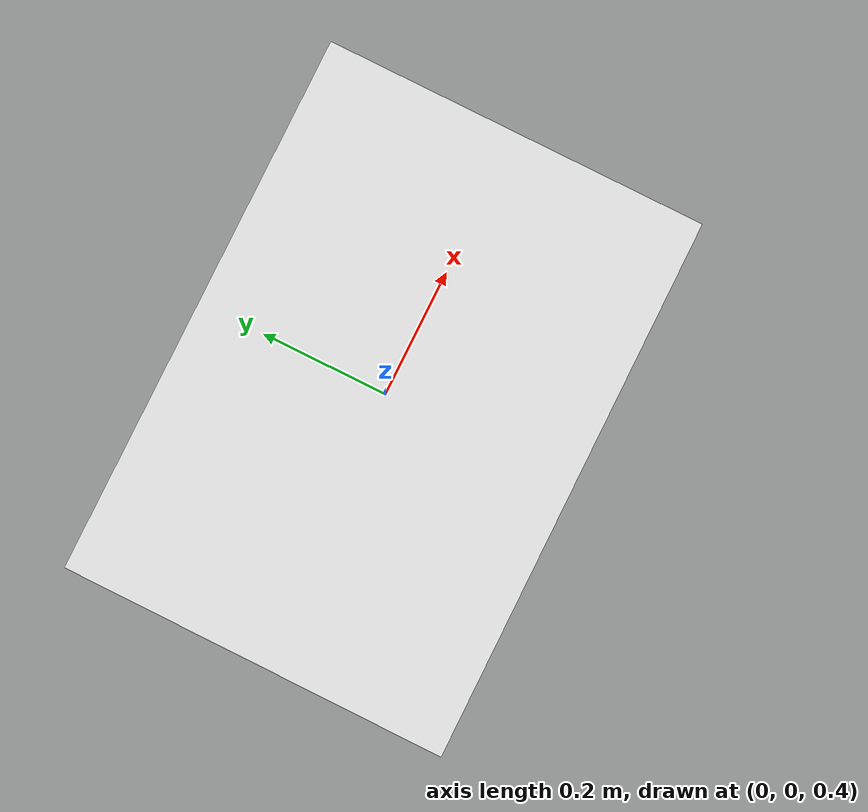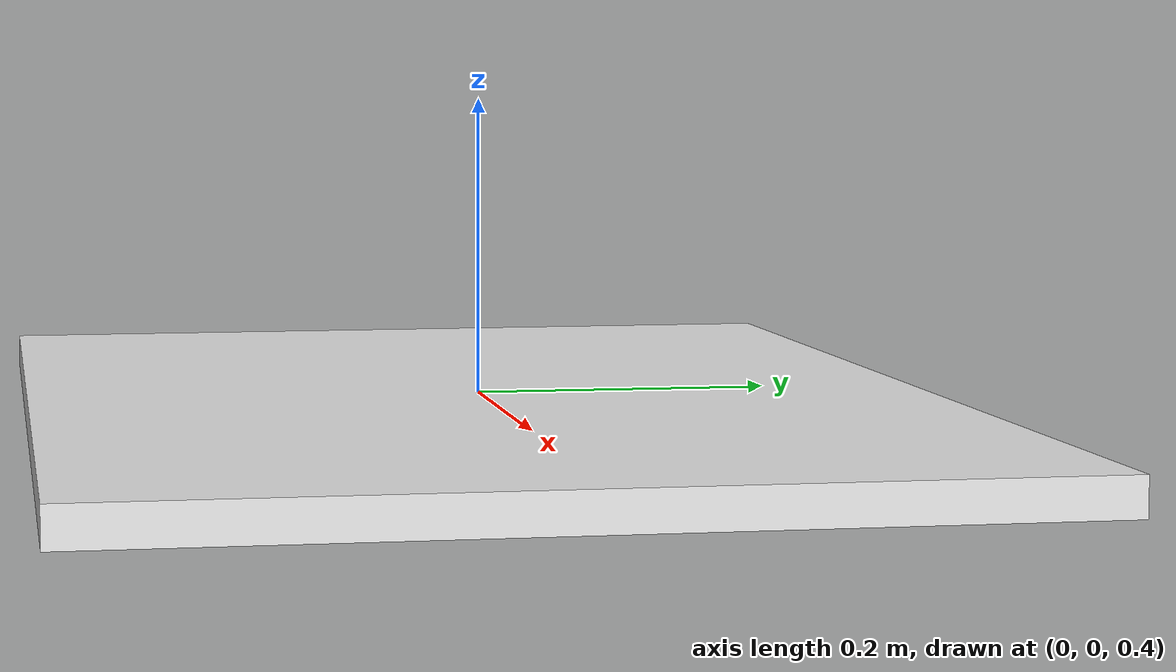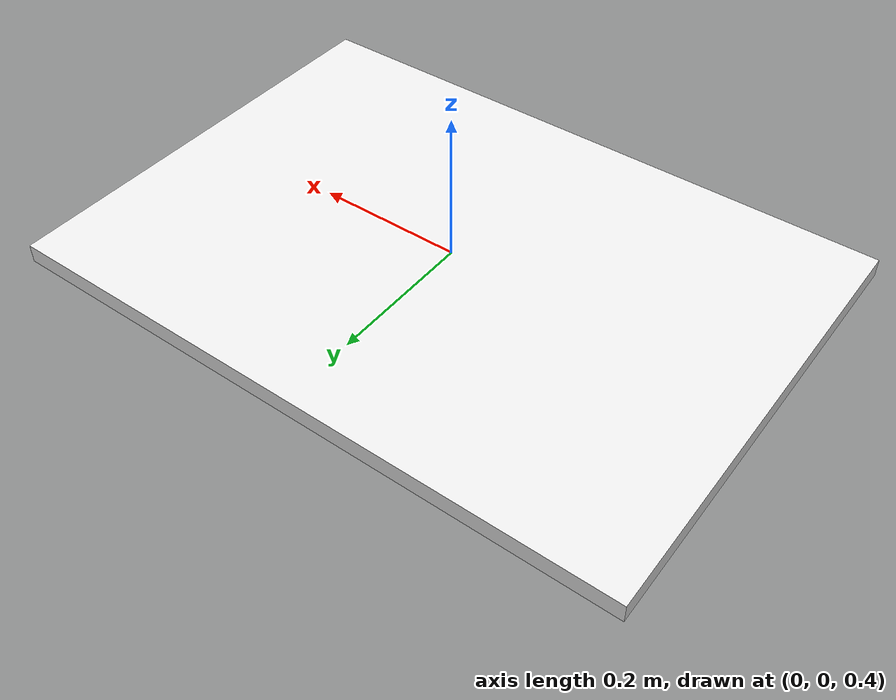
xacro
<?xml version="1.0"?>
<!-- Revolute-Revolute Manipulator -->
<robot name="rrbot" xmlns:xacro="http://www.ros.org/wiki/xacro">

  <!-- Constants for robot dimensions -->
  <xacro:property name="PI" value="3.1415926535897931"/>
  <xacro:property name="mass" value="1" /> <!-- arbitrary value for mass -->
  <xacro:property name="width" value="0.075" /> <!-- Square dimensions (widthxwidth) of beams -->
  <xacro:property name="boxwidth" value="1" /> <!-- Square dimensions (widthxwidth) of beams -->
  <xacro:property name="boxheight" value="0.1" /> <!-- Square dimensions (widthxwidth) of beams -->
  <xacro:property name="width3" value="0.1" /> <!-- Square dimensions (widthxwidth) of beams -->
  <xacro:property name="d1" value="0.47625" /> <!-- Distance from ground to second joint -->
  <xacro:property name="a1" value="0.05398" /> <!-- Horizontal offset from turret to first joint -->
  <xacro:property name="a2" value="0.3857625" /> <!-- First tube length -->
  <xacro:property name="a3" value="0.06985" /> <!-- Vertical offset to next link-->
  <xacro:property name="d4" value="0.358775" /> <!-- 2nd tube length -->
  <xacro:property name="d6" value="0.238125" /> <!-- Distance from dynamixel joint to claw tip -->
  <xacro:property name="dyn" value="0" /> <!-- Dynamixel length -->
  <xacro:property name="axel_offset" value="0.05" /> <!-- Space btw top of beam and the each joint -->
  <xacro:property name="Torque" value = "40" />
  <xacro:property name="vel" value = "10" />

    <!-- collision box for flat top of rover  -->
  <xacro:property name="flattopwidth" value=".6096" />
  <xacro:property name="flattoplength" value=".8636" />
  <xacro:property name="flattopheight" value="0.0254" />
  <xacro:property name="flattop_offground" value="0.37465" />

  <!-- Import all Gazebo-customization elements, including Gazebo colors -->
  <xacro:include filename="$(find hal_description)/urdf/hal.gazebo" />
  <!-- Import Rviz colors -->
  <xacro:include filename="$(find hal_description)/urdf/materials.xacro" />

  <!-- Used for fixing robot to Gazebo 'base_link' -->
  <link name="world"/>

  <joint name="fixed" type="fixed">
    <parent link="world"/>
    <child link="base1"/>
  </joint>

  <!-- Base Link -->
  <link name="base1">

    <visual>
      <origin xyz="0 0 ${flattop_offground + (1/2)*flattopheight}" rpy="0 0 0"/>
      <geometry>
	  <box size="${flattoplength} ${flattopwidth} ${flattopheight}"/>
	  <box size="1.0 1.0 1.0"/>
      </geometry>
      <material name="white"/>
    </visual>

  </link>

  <!-- Turret-->

  <!-- Turret Box -->

</robot>
